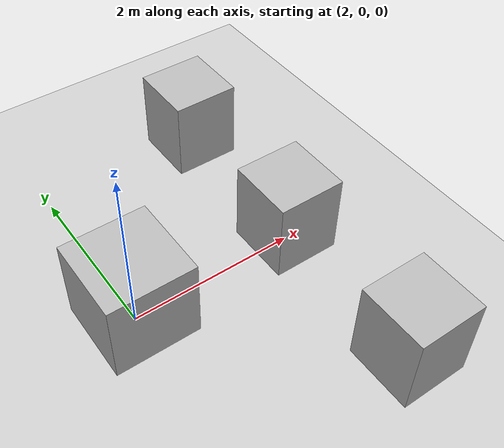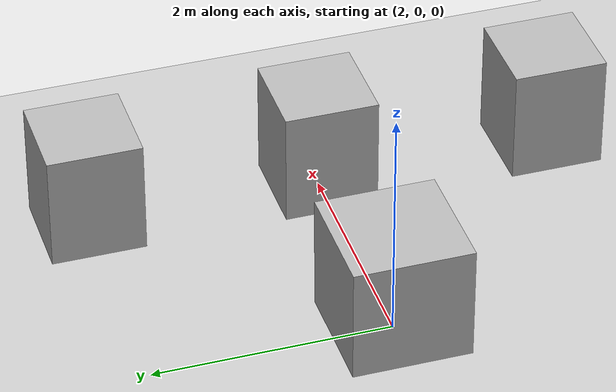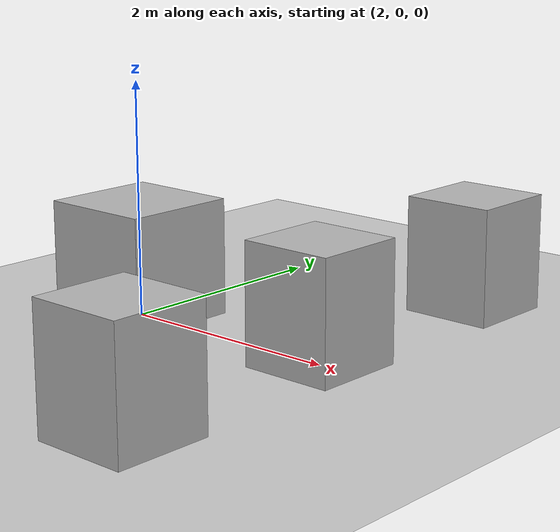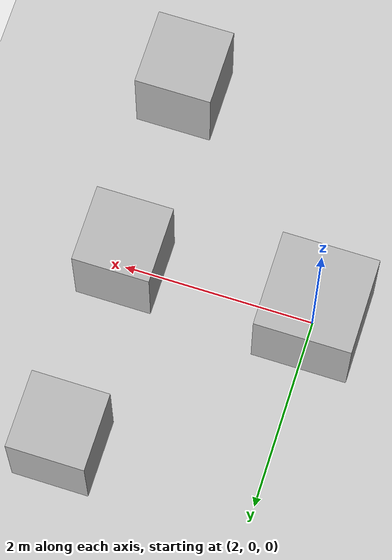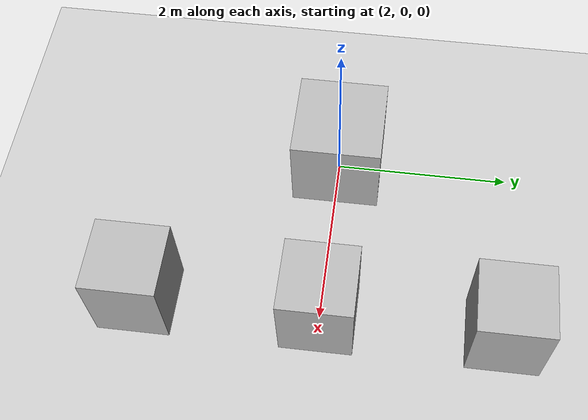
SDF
<?xml version="1.0" ?>
<sdf version="1.6">

  <world name="cafe_world">

    <include>
      <uri>model://ground_plane</uri>
    </include>

    <include>
      <uri>model://sun</uri>
    </include>

    <!-- Kitchen -->

    <model name="kitchen">

      <static>true</static>

      <pose>2 0 0.5 0 0 0</pose>

      <link name="link">

        <collision name="collision">
          <geometry>
            <box>
              <size>1 1 1</size>
            </box>
          </geometry>
        </collision>

        <visual name="visual">
          <geometry>
            <box>
              <size>1 1 1</size>
            </box>
          </geometry>
        </visual>

      </link>

    </model>

    <!-- Table 1 -->

    <model name="t1">

      <static>true</static>

      <pose>4 2 0.5 0 0 0</pose>

      <link name="link">

        <collision name="collision">
          <geometry>
            <box>
              <size>0.8 0.8 1</size>
            </box>
          </geometry>
        </collision>

        <visual name="visual">
          <geometry>
            <box>
              <size>0.8 0.8 1</size>
            </box>
          </geometry>
        </visual>

      </link>

    </model>

    <!-- Table 2 -->

    <model name="t2">

      <static>true</static>

      <pose>4 0 0.5 0 0 0</pose>

      <link name="link">

        <collision name="collision">
          <geometry>
            <box>
              <size>0.8 0.8 1</size>
            </box>
          </geometry>
        </collision>

        <visual name="visual">
          <geometry>
            <box>
              <size>0.8 0.8 1</size>
            </box>
          </geometry>
        </visual>

      </link>

    </model>

    <!-- Table 3 -->

    <model name="t3">

      <static>true</static>

      <pose>4 -2 0.5 0 0 0</pose>

      <link name="link">

        <collision name="collision">
          <geometry>
            <box>
              <size>0.8 0.8 1</size>
            </box>
          </geometry>
        </collision>

        <visual name="visual">
          <geometry>
            <box>
              <size>0.8 0.8 1</size>
            </box>
          </geometry>
        </visual>

      </link>

    </model>

  </world>

</sdf>
